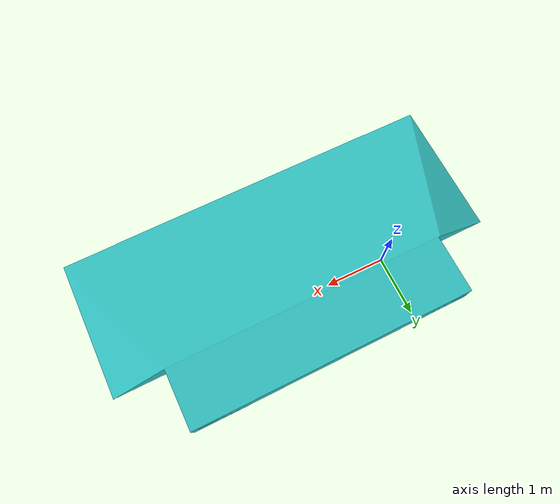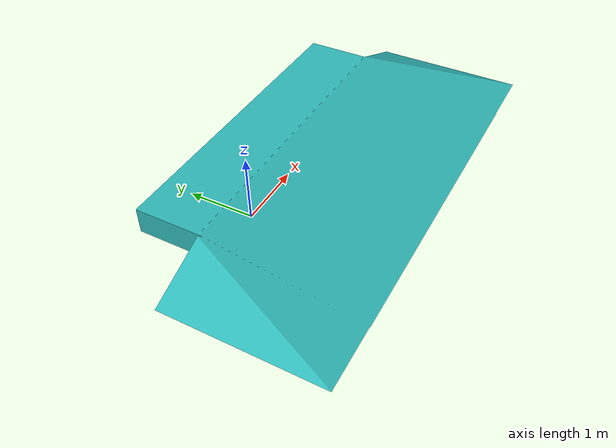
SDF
<?xml version='1.0'?>
<sdf version='1.5'>
  <model name='sideslope'>
    <link name='link'>
        <inertial>
          <pose>0 0 0 0 0 0</pose>
          <mass>20</mass>
          <inertia>
            <ixx>0</ixx>
            <ixy>0</ixy>
            <ixz>0</ixz>
            <iyy>0</iyy>
            <iyz>0</iyz>
            <izz>0</izz>
          </inertia>
      </inertial>
      <collision name='collision'>
        <pose>0 0 0 0 0 0 </pose>
          <geometry>
          <mesh>
            <uri>model://sideslope/meshes/Sideslope.stl</uri>
            <scale>0.0002 0.0002 0.0002</scale>
          </mesh>
        </geometry>
      </collision>
      <visual name='visual'>
        <geometry>
          <mesh>
            <uri>model://sideslope/meshes/Sideslope.stl</uri>
            <scale>0.0002 0.0002 0.0002</scale>
          </mesh>
        </geometry>
        <material>
          <script>
            <name>Gazebo/Turquoise</name>
            <uri>file://media/materials/scripts/gazebo.material</uri>
          </script>
        </material>
      </visual>
    </link>
  </model>
</sdf>
